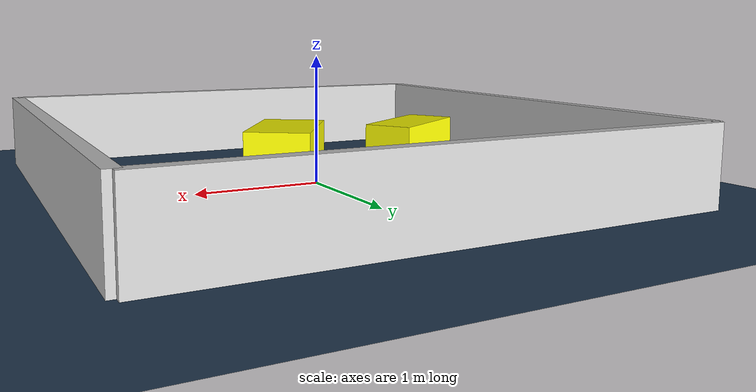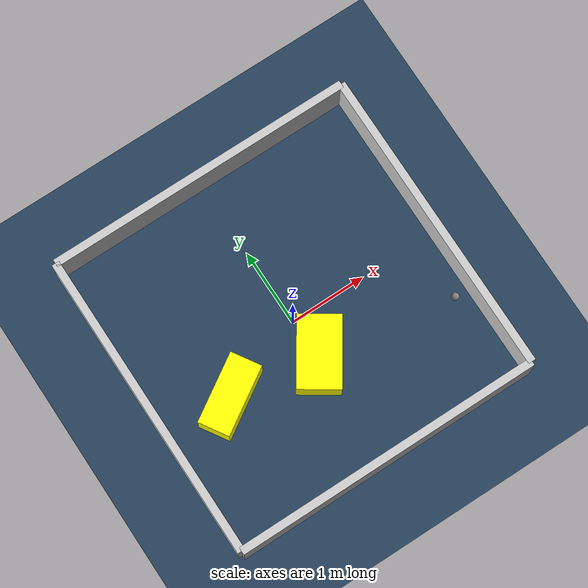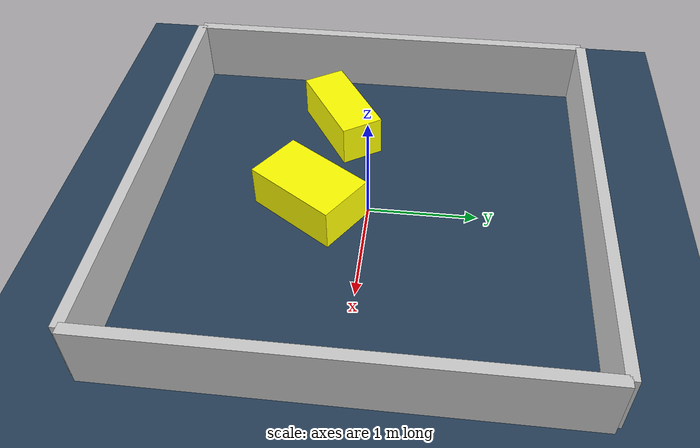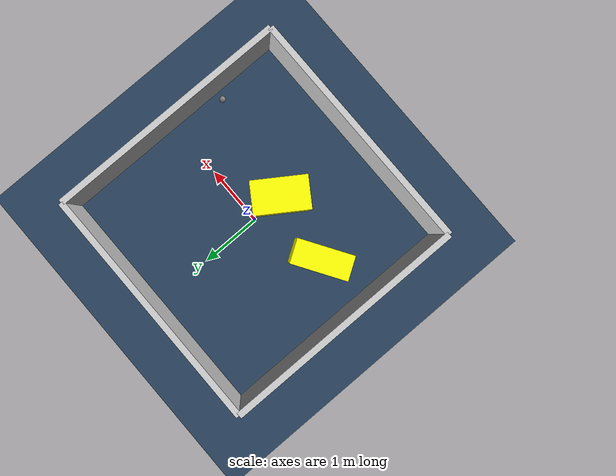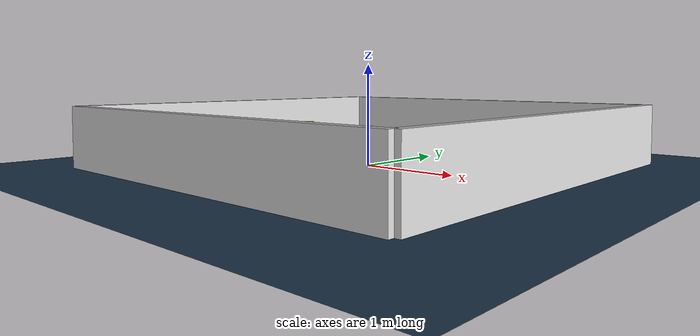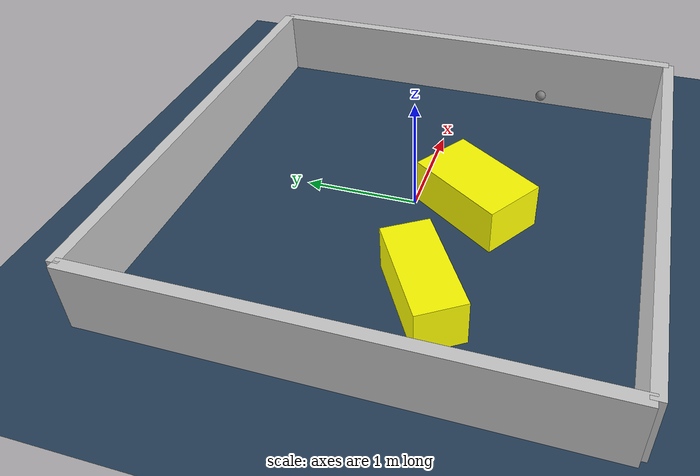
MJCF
<?xml version="1.0" ?>
<mujoco model="generated_environment">
  <option timestep="0.01" integrator="RK4" cone="elliptic"/>
  <default>
    <geom density="1"/>
  </default>
  <asset>
    <texture builtin="gradient" height="3072" rgb1="0.3 0.5 0.7" rgb2="0 0 0" type="skybox" width="512"/>
    <texture builtin="checker" height="300" mark="edge" markrgb="0.8 0.8 0.8" name="groundplane" rgb1="0.2 0.3 0.4" rgb2="0.1 0.2 0.3" type="2d" width="300"/>
    <material name="groundplane" reflectance="0.2" texrepeat="5 5" texture="groundplane" texuniform="true"/>
    <material name="robot" rgba="0.0 1.0 0.0 1"/>
  </asset>
  <worldbody>
    <light dir="0 0 -1" directional="true" pos="0 0 1.5"/>
    <geom condim="4" friction="1.0 0.005 0.001" material="groundplane" name="floor" size="0 0 0.05" type="plane"/>
    <body name="walls">
      <geom name="wall_1" condim="4" pos="-2.0 0.0 0.3" rgba="0.800000011920929 0.800000011920929 0.800000011920929 1.0" size="0.05 2.0 0.3" type="box"/>
      <geom name="wall_2" condim="4" pos="2.0 0.0 0.3" rgba="0.800000011920929 0.800000011920929 0.800000011920929 1.0" size="0.05 2.0 0.3" type="box"/>
      <geom name="wall_3" condim="4" pos="0.0 -2.0 0.3" rgba="0.800000011920929 0.800000011920929 0.800000011920929 1.0" size="2.0 0.05 0.3" type="box"/>
      <geom name="wall_4" condim="4" pos="0.0 2.0 0.3" rgba="0.800000011920929 0.800000011920929 0.800000011920929 1.0" size="2.0 0.05 0.3" type="box"/>
    </body>
    <body name="robot">
      <joint name="joint_x" type="slide" pos="0 0 0" axis="1 0 0"/>
      <joint name="joint_y" type="slide" pos="0 0 0" axis="0 1 0"/>
      <geom name="robot" type="sphere" pos="1.7586125764483334 -0.8254913648977616 0.2" size="0.05" mass="5." friction="1.0 0.005 0.0001" condim="4"/>
      <site name="sensor_ball"/>
    </body>
    <body name="obstacle_1_movable">
      <geom name="obstacle_1_movable" condim="4" pos="0.02797851871510093 -0.5275421259653625 0.2" euler="0 0 326.28000642278005" friction="1.0 0.005 0.001" rgba="1 1 0 1" size="0.2702189957843842 0.4503495669177089 0.2" type="box" mass="0.1"/>
      <joint type="free"/>
    </body>
    <body name="obstacle_2_movable">
      <geom name="obstacle_2_movable" condim="4" pos="-1.117035263085567 -0.37699912864118046 0.2" euler="0 0 302.47057960993396" friction="1.0 0.005 0.001" rgba="1 1 0 1" size="0.20279151848664367 0.45845333707690444 0.2" type="box" mass="0.1"/>
      <joint type="free"/>
    </body>
  </worldbody>
  <actuator>
    <motor name="actuator_x" joint="joint_x" gear="1" ctrlrange="-1 1"/>
    <motor name="actuator_y" joint="joint_y" gear="1" ctrlrange="-1 1"/>
  </actuator>
</mujoco>
